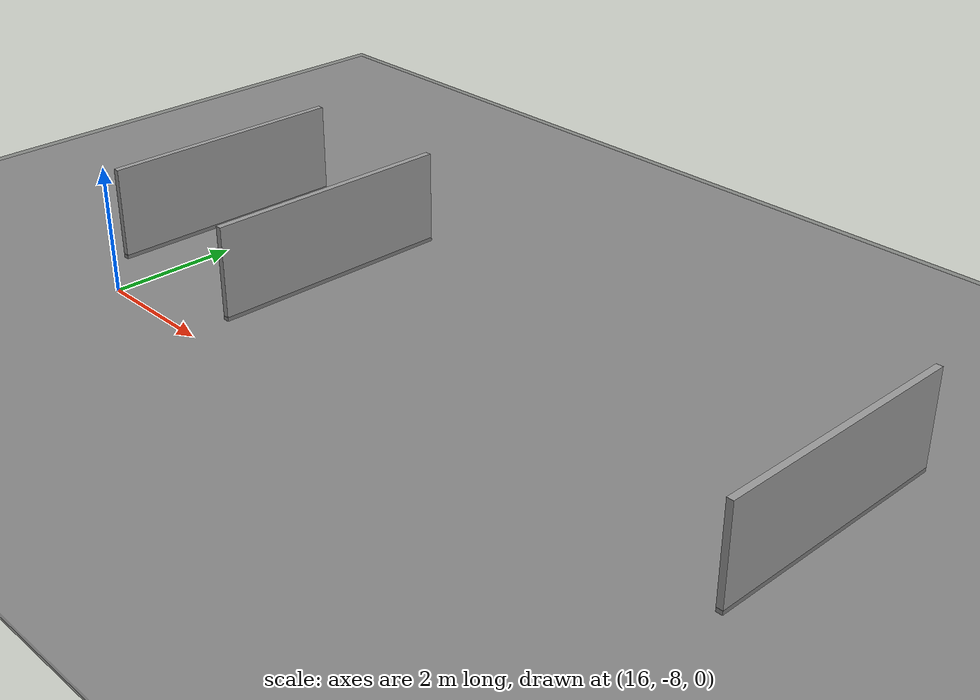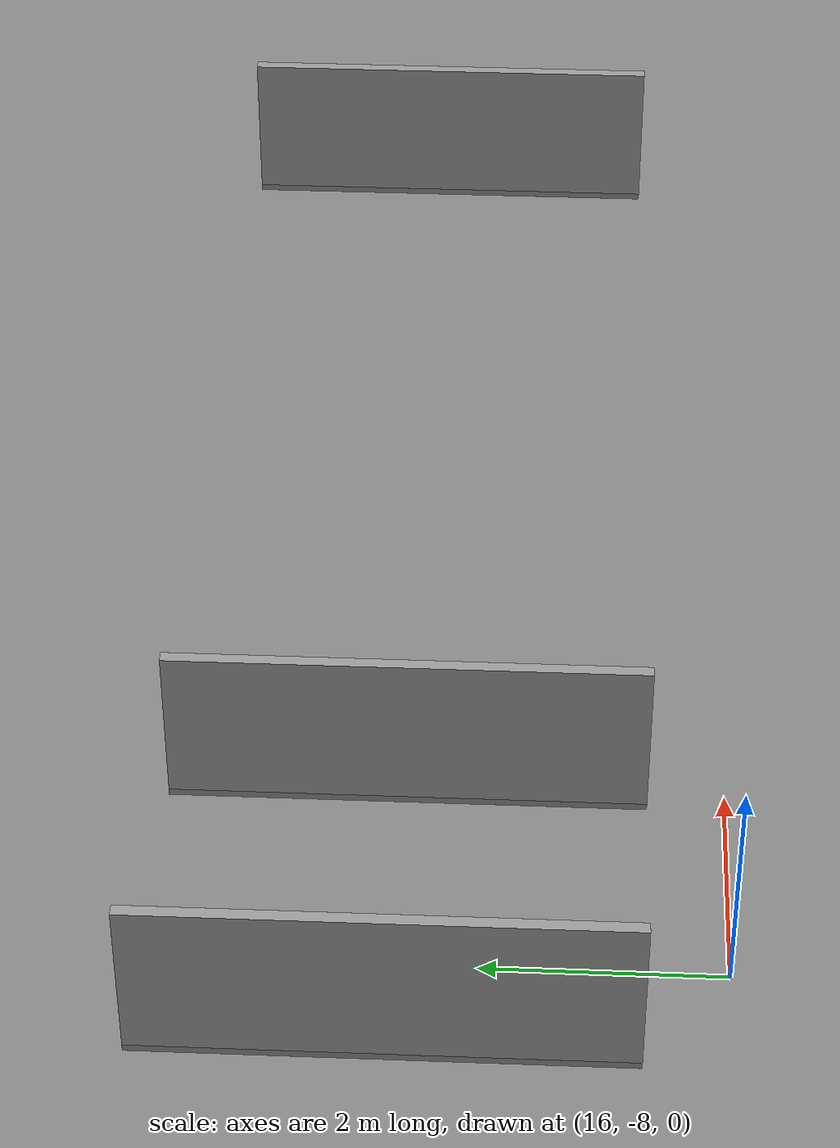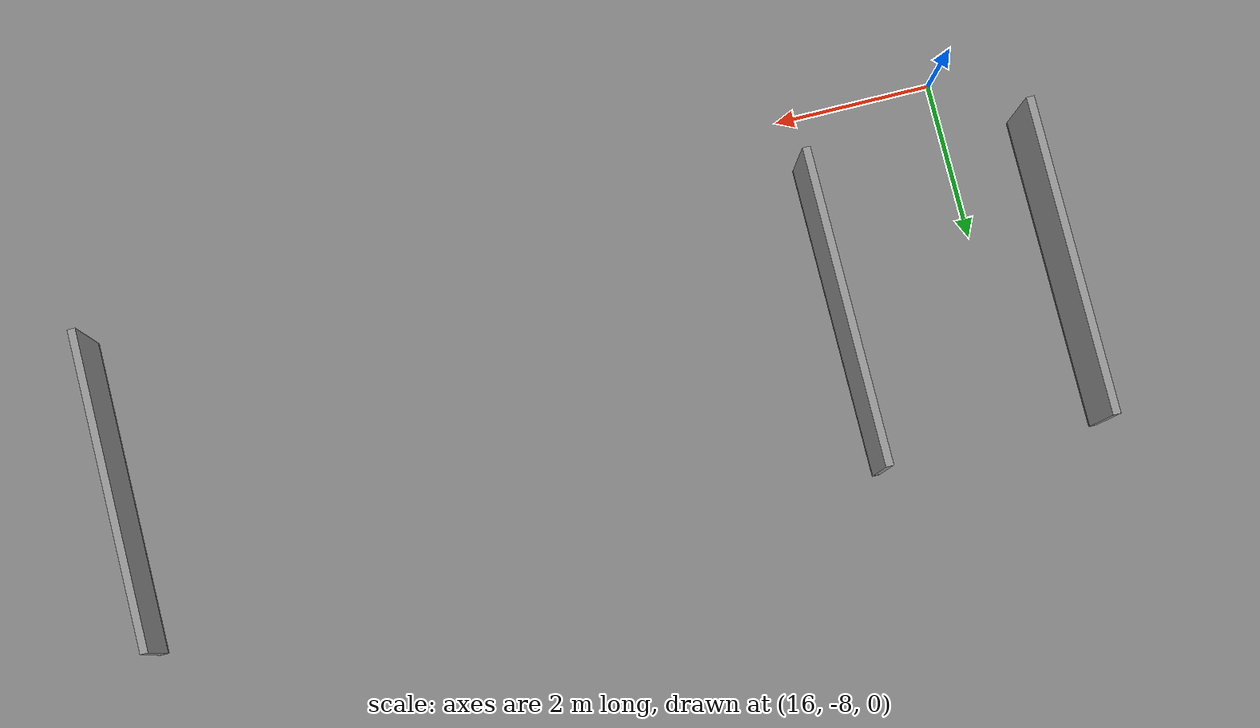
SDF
<sdf version="1.4">
 <world name="default">
  <model name="ground_plane">
   <static>1</static>
   <link name="link">
    <collision name="collision">
     <geometry><plane><normal>0 0 1</normal><size>100 100</size></plane></geometry>
     <surface><friction><ode><mu>150</mu><mu2>100</mu2></ode></friction></surface>
    </collision>
    <visual name="visual">
     <cast_shadows>0</cast_shadows>
     <transparency>0.5</transparency>
     <geometry><plane><normal>0 0 1</normal><size>100 100</size></plane></geometry>
     <material>
      <script><uri>file://media/materials/scripts/gazebo.material</uri><name>Gazebo/Grey</name></script>
     </material>
    </visual>
    <velocity_decay><linear>0</linear><angular>0</angular></velocity_decay>
   </link>
  </model>
  <light name="sun" type="directional">
   <pose>0 0 10 0 -0 0</pose>
   <diffuse>0.8 0.8 0.8 1</diffuse>
   <specular>0.2 0.2 0.2 1</specular>
   <attenuation>
    <range>1000</range>
    <constant>0.9</constant>
    <linear>0.01</linear>
    <quadratic>0.001</quadratic>
   </attenuation>
   <direction>-0.5 0.1 -0.9</direction>
  </light>
  <physics type="ode">
   <max_step_size>0.001</max_step_size>
   <real_time_factor>1</real_time_factor>
   <real_time_update_rate>1000</real_time_update_rate>
   <gravity>0 0 -9.8</gravity>
  </physics>
  <scene><ambient>0.4 0.4 0.4 1</ambient><background>0.7 0.7 0.7 1</background><shadows>1</shadows></scene>
  <spherical_coordinates>
   <surface_model>EARTH_WGS84</surface_model>
   <latitude_deg>0</latitude_deg>
   <longitude_deg>0</longitude_deg>
   <elevation>0</elevation>
   <heading_deg>0</heading_deg>
  </spherical_coordinates>
  <model name="asphalt_plane_3">
   <static>1</static>
   <link name="link">
    <collision name="collision"><geometry><box><size>1000 1000 0.1</size></box></geometry></collision>
    <visual name="visual">
     <cast_shadows>0</cast_shadows>
     <transparency>0.5</transparency>
     <geometry><box><size>1000 1000 0.1</size></box></geometry>
     <material>
      <script>
       <uri>model://asphalt_plane/materials/scripts</uri>
       <uri>model://asphalt_plane/materials/textures</uri>
       <name>vrc/asphalt</name>
      </script>
     </material>
    </visual>
    <velocity_decay><linear>0</linear><angular>0</angular></velocity_decay>
   </link>
  </model>
  <model name="unit_box_4">
   <static>1</static>
   <pose>27.04 -5.32 0.5 0 -0 0</pose>
   <link name="link">
    <inertial>
     <mass>1</mass>
     <inertia>
      <ixx>0.166667</ixx>
      <ixy>0</ixy>
      <ixz>0</ixz>
      <iyy>0.166667</iyy>
      <iyz>0</iyz>
      <izz>0.166667</izz>
     </inertia>
    </inertial>
    <collision name="collision"><geometry><box><size>0.1 4.0 2.0</size></box></geometry></collision>
    <visual name="visual">
     <geometry><box><size>0.1 4.0 2.0</size></box></geometry>
     <material>
      <script><name>Gazebo/Grey</name><uri>file://media/materials/scripts/gazebo.material</uri></script>
     </material>
    </visual>
   </link>
  </model>
  <model name="unit_box_5">
   <static>1</static>
   <pose>15.1 -5.3 0.5 0 0 0</pose>
   <link name="link">
    <inertial>
     <mass>1</mass>
     <inertia>
      <ixx>0.166667</ixx>
      <ixy>0</ixy>
      <ixz>0</ixz>
      <iyy>0.166667</iyy>
      <iyz>0</iyz>
      <izz>0.166667</izz>
     </inertia>
    </inertial>
    <collision name="collision"><geometry><box><size>0.1 4 2.0</size></box></geometry></collision>
    <visual name="visual">
     <geometry><box><size>0.1 4 2.0</size></box></geometry>
     <material>
      <script><name>Gazebo/Grey</name><uri>file://media/materials/scripts/gazebo.material</uri></script>
     </material>
    </visual>
   </link>
  </model>
  <model name="unit_box_6">
   <static>1</static>
   <pose>17.9 -5.35 0.5 0 0 0</pose>
   <link name="link">
    <inertial>
     <mass>1</mass>
     <inertia>
      <ixx>0.166667</ixx>
      <ixy>0</ixy>
      <ixz>0</ixz>
      <iyy>0.166667</iyy>
      <iyz>0</iyz>
      <izz>0.166667</izz>
     </inertia>
    </inertial>
    <collision name="collision"><geometry><box><size>0.1 4 2.0</size></box></geometry></collision>
    <visual name="visual">
     <geometry><box><size>0.1 4 2.0</size></box></geometry>
     <material>
      <script><name>Gazebo/Grey</name><uri>file://media/materials/scripts/gazebo.material</uri></script>
     </material>
    </visual>
   </link>
  </model>
 </world>
</sdf>
